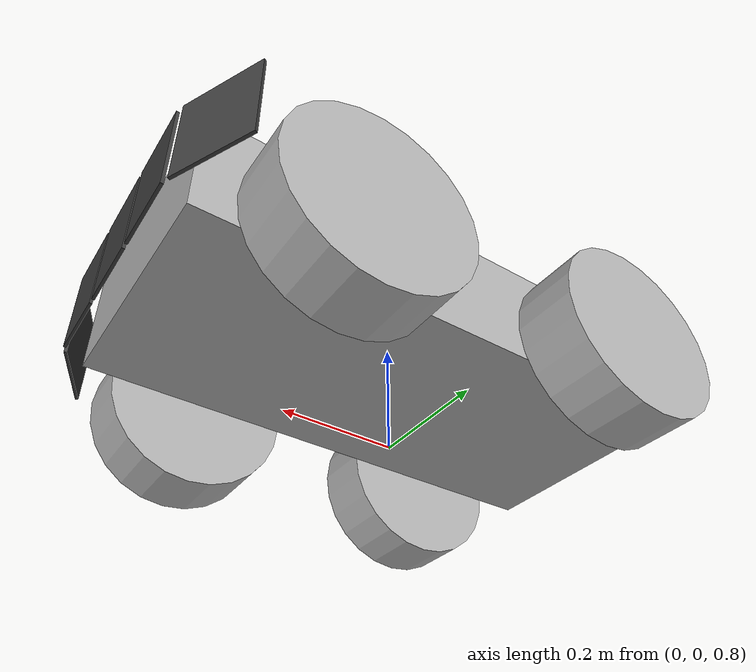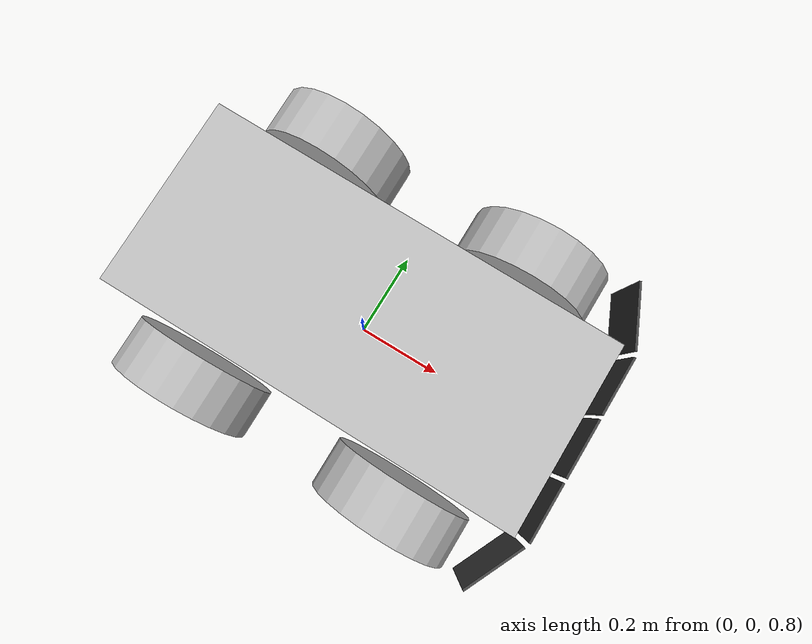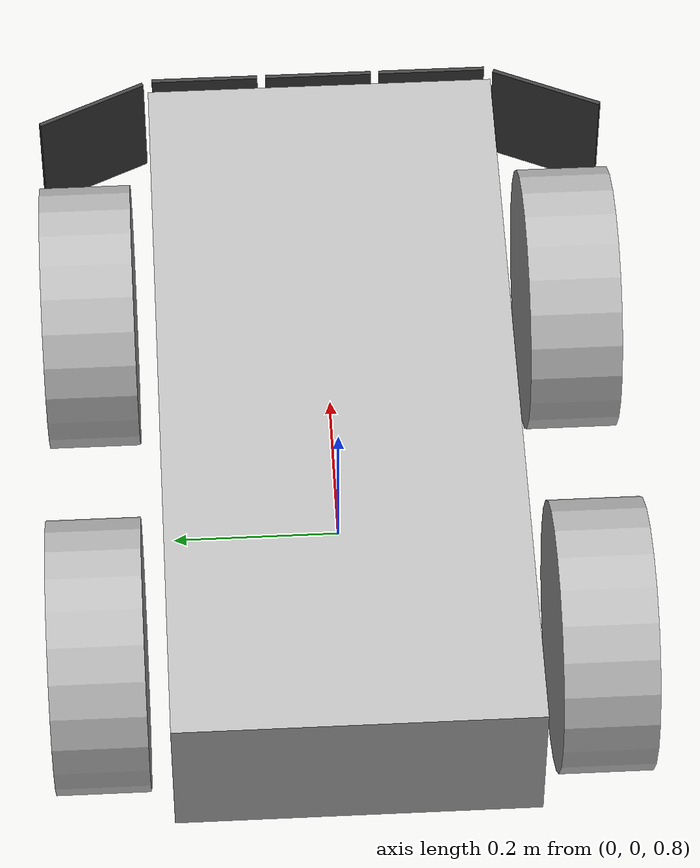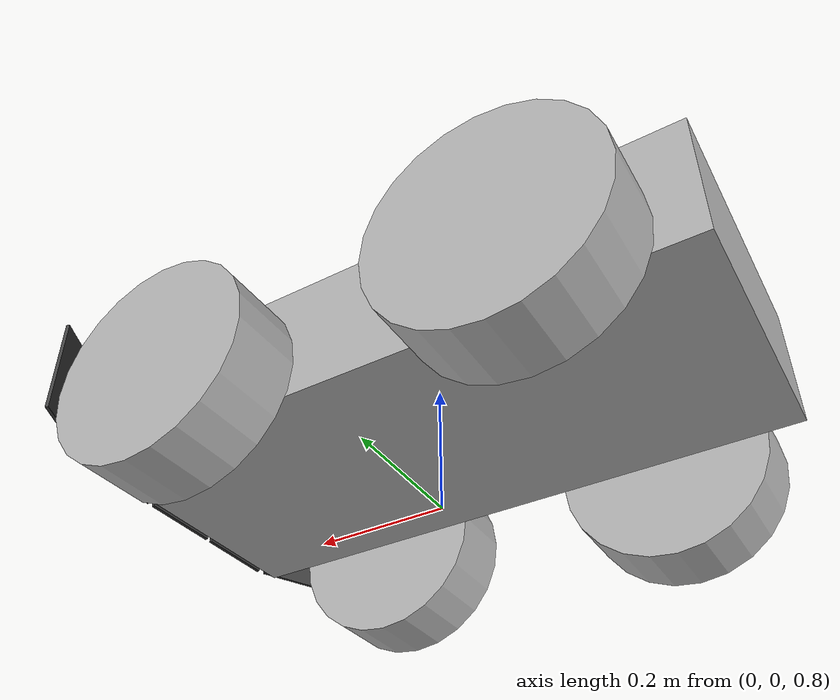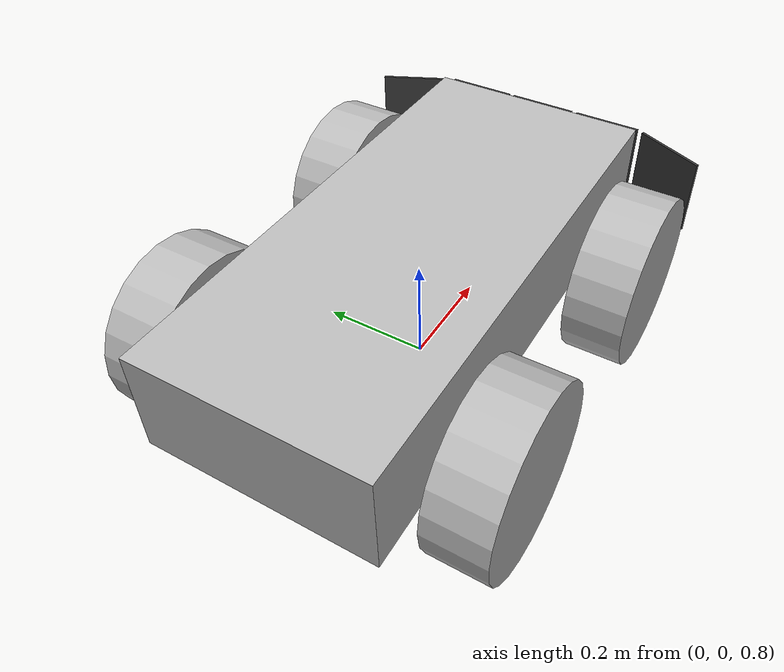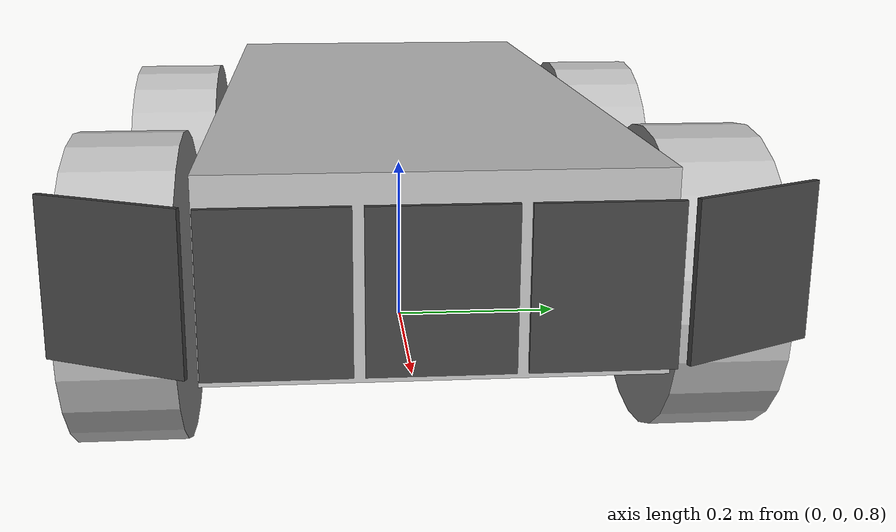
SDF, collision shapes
<?xml version="1.0" ?>
<!-- |    This document was autogenerated by xacro from model.xacro                    | -->
<!-- |    EDITING THIS FILE BY HAND IS NOT RECOMMENDED                                 | -->
<sdf version="1.10">
  <model canonical_link="chassis" name="scout">
    <!-- base_link -->
    <link name="chassis">
      <pose relative_to="__model__">0 0 1 0 0 0</pose>
      <inertial auto="true">
        <mass>67</mass>
      </inertial>
      <visual name="visual">
        <geometry>
          <mesh>
            <uri>meshes/scout_base.dae</uri>
          </mesh>
        </geometry>
      </visual>
      <collision name="collision">
        <geometry>
          <box>
            <size>0.93 0.42 0.19</size>
          </box>
        </geometry>
      </collision>
      <sensor name="imu_sensor" type="imu">
        <always_on>true</always_on>
        <update_rate>1</update_rate>
        <visualize>true</visualize>
        <topic>scout/imu</topic>
      </sensor>
    </link>
    <!-- wheels -->
    <link name="front_left_wheel">
      <pose relative_to="chassis">0.249 0.29153 -0.0702 0.0 0.0 0.0</pose>
      <inertial auto="true">
        <mass>8</mass>
      </inertial>
      <visual name="visual">
        <geometry>
          <mesh>
            <uri>meshes/wheel_type2.dae</uri>
          </mesh>
        </geometry>
      </visual>
      <collision name="collision">
        <pose relative_to="chassis">0.249 0.29153 -0.0702 1.5707963267948966 0.0 0.0</pose>
        <geometry>
          <cylinder>
            <radius>0.16</radius>
            <length>0.11</length>
          </cylinder>
        </geometry>
      </collision>
    </link>
    <joint name="front_left_wheel_joint" type="revolute">
      <pose relative_to="front_left_wheel"/>
      <parent>chassis</parent>
      <child>front_left_wheel</child>
      <axis>
        <xyz expressed_in="__model__">0 1 0</xyz>
        <limit>
          <lower>-inf</lower>
          <upper>inf</upper>
        </limit>
      </axis>
    </joint>
    <link name="front_right_wheel">
      <pose relative_to="chassis">0.249 -0.29153 -0.0702 3.141592653589793 0.0 0.0</pose>
      <inertial auto="true">
        <mass>8</mass>
      </inertial>
      <visual name="visual">
        <geometry>
          <mesh>
            <uri>meshes/wheel_type1.dae</uri>
          </mesh>
        </geometry>
      </visual>
      <collision name="collision">
        <pose relative_to="chassis">0.249 -0.29153 -0.0702 -1.5707963267948966 0.0 0.0</pose>
        <geometry>
          <cylinder>
            <radius>0.16</radius>
            <length>0.11</length>
          </cylinder>
        </geometry>
      </collision>
    </link>
    <joint name="front_right_wheel_joint" type="revolute">
      <pose relative_to="front_right_wheel"/>
      <parent>chassis</parent>
      <child>front_right_wheel</child>
      <axis>
        <xyz expressed_in="__model__">0 1 0</xyz>
        <limit>
          <lower>-inf</lower>
          <upper>inf</upper>
        </limit>
      </axis>
    </joint>
    <link name="back_left_wheel">
      <pose relative_to="chassis">-0.249 0.29153 -0.0702 0.0 0.0 0.0</pose>
      <inertial auto="true">
        <mass>8</mass>
      </inertial>
      <visual name="visual">
        <geometry>
          <mesh>
            <uri>meshes/wheel_type1.dae</uri>
          </mesh>
        </geometry>
      </visual>
      <collision name="collision">
        <pose relative_to="chassis">-0.249 0.29153 -0.0702 1.5707963267948966 0.0 0.0</pose>
        <geometry>
          <cylinder>
            <radius>0.16</radius>
            <length>0.11</length>
          </cylinder>
        </geometry>
      </collision>
    </link>
    <joint name="back_left_wheel_joint" type="revolute">
      <pose relative_to="back_left_wheel"/>
      <parent>chassis</parent>
      <child>back_left_wheel</child>
      <axis>
        <xyz expressed_in="__model__">0 1 0</xyz>
        <limit>
          <lower>-inf</lower>
          <upper>inf</upper>
        </limit>
      </axis>
    </joint>
    <link name="back_right_wheel">
      <pose relative_to="chassis">-0.249 -0.29153 -0.0702 3.141592653589793 0.0 0.0</pose>
      <inertial auto="true">
        <mass>8</mass>
      </inertial>
      <visual name="visual">
        <geometry>
          <mesh>
            <uri>meshes/wheel_type2.dae</uri>
          </mesh>
        </geometry>
      </visual>
      <collision name="collision">
        <pose relative_to="chassis">-0.249 -0.29153 -0.0702 -1.5707963267948966 0.0 0.0</pose>
        <geometry>
          <cylinder>
            <radius>0.16</radius>
            <length>0.11</length>
          </cylinder>
        </geometry>
      </collision>
    </link>
    <joint name="back_right_wheel_joint" type="revolute">
      <pose relative_to="back_right_wheel"/>
      <parent>chassis</parent>
      <child>back_right_wheel</child>
      <axis>
        <xyz expressed_in="__model__">0 1 0</xyz>
        <limit>
          <lower>-inf</lower>
          <upper>inf</upper>
        </limit>
      </axis>
    </joint>
    <!-- visual connection -->
    <link name="force_bar_connection_visual">
      <visual name="force_bar_connection_visual_center_bar_left">
        <pose relative_to="chassis">0.4 0.04 0 0 0 0</pose>
        <geometry>
          <box>
            <size>0.2 0.025 0.025</size>
          </box>
        </geometry>
        <material>
          <ambient>0.25 0.25 0.25 1.0</ambient>
          <diffuse>0.25 0.25 0.25 1.0</diffuse>
          <specular>0.25 0.25 0.25 1.0</specular>
        </material>
      </visual>
      <visual name="force_bar_connection_visual_center_bar_right">
        <pose relative_to="chassis">0.4 -0.04 0 0 0 0</pose>
        <geometry>
          <box>
            <size>0.2 0.025 0.025</size>
          </box>
        </geometry>
        <material>
          <ambient>0.25 0.25 0.25 1.0</ambient>
          <diffuse>0.25 0.25 0.25 1.0</diffuse>
          <specular>0.25 0.25 0.25 1.0</specular>
        </material>
      </visual>
      <visual name="force_bar_connection_visual_front_bar_top">
        <pose relative_to="chassis">0.4875 0 0 0 0 0</pose>
        <geometry>
          <box>
            <size>0.025 0.41 0.025</size>
          </box>
        </geometry>
        <material>
          <ambient>0.25 0.25 0.25 1.0</ambient>
          <diffuse>0.25 0.25 0.25 1.0</diffuse>
          <specular>0.25 0.25 0.25 1.0</specular>
        </material>
      </visual>
      <visual name="force_bar_connection_visual_front_bar_left">
        <pose relative_to="chassis">0.4575 0.265 0 0 0 0.43633</pose>
        <geometry>
          <box>
            <size>0.025 0.15 0.025</size>
          </box>
        </geometry>
        <material>
          <ambient>0.25 0.25 0.25 1.0</ambient>
          <diffuse>0.25 0.25 0.25 1.0</diffuse>
          <specular>0.25 0.25 0.25 1.0</specular>
        </material>
      </visual>
      <visual name="force_bar_connection_visual_front_bar_right">
        <pose relative_to="chassis">0.4575 -0.265 0 0 0 -0.43633</pose>
        <geometry>
          <box>
            <size>0.025 0.15 0.025</size>
          </box>
        </geometry>
        <material>
          <ambient>0.25 0.25 0.25 1.0</ambient>
          <diffuse>0.25 0.25 0.25 1.0</diffuse>
          <specular>0.25 0.25 0.25 1.0</specular>
        </material>
      </visual>
    </link>
    <joint name="force_bar_connection_visual_joint" type="fixed">
      <pose relative_to="force_bar_connection_visual"/>
      <parent>chassis</parent>
      <child>force_bar_connection_visual</child>
    </joint>
    <!-- sensor bar -->
    <link name="force_bar_P0_link">
      <pose relative_to="chassis">0.466 0.28 0.0 1.5707963267948966 0.0 0.43633</pose>
      <inertial auto="true">
        <mass>1</mass>
      </inertial>
      <visual name="visual">
        <geometry>
          <box>
            <size>0.005 0.15 0.14</size>
          </box>
        </geometry>
        <material>
          <ambient>0.25 0.25 0.25 1.0</ambient>
          <diffuse>0.25 0.25 0.25 1.0</diffuse>
          <specular>0.25 0.25 0.25 1.0</specular>
        </material>
      </visual>
      <collision name="collision">
        <geometry>
          <box>
            <size>0.005 0.15 0.14</size>
          </box>
        </geometry>
      </collision>
    </link>
    <joint name="force_bar_P0_joint" type="fixed">
      <pose relative_to="force_bar_P0_link"/>
      <parent>chassis</parent>
      <child>force_bar_P0_link</child>
      <sensor name="force_bar_P0_sensor" type="force_torque">
        <always_on>true</always_on>
        <update_rate>1000</update_rate>
        <visualize>true</visualize>
        <topic>/scout/force_bar/segment_0</topic>
      </sensor>
    </joint>
    <link name="force_bar_P1_link">
      <pose relative_to="chassis">0.5 0.14 0.0 1.5707963267948966 0.0 0.0</pose>
      <inertial auto="true">
        <mass>1</mass>
      </inertial>
      <visual name="visual">
        <geometry>
          <box>
            <size>0.005 0.15 0.13</size>
          </box>
        </geometry>
        <material>
          <ambient>0.25 0.25 0.25 1.0</ambient>
          <diffuse>0.25 0.25 0.25 1.0</diffuse>
          <specular>0.25 0.25 0.25 1.0</specular>
        </material>
      </visual>
      <collision name="collision">
        <geometry>
          <box>
            <size>0.005 0.15 0.13</size>
          </box>
        </geometry>
      </collision>
    </link>
    <joint name="force_bar_P1_joint" type="fixed">
      <pose relative_to="force_bar_P1_link"/>
      <parent>chassis</parent>
      <child>force_bar_P1_link</child>
      <sensor name="force_bar_P1_sensor" type="force_torque">
        <always_on>true</always_on>
        <update_rate>1000</update_rate>
        <visualize>true</visualize>
        <topic>/scout/force_bar/segment_1</topic>
      </sensor>
    </joint>
    <link name="force_bar_P2_link">
      <pose relative_to="chassis">0.5 0.0 0.0 1.5707963267948966 0.0 0.0</pose>
      <inertial auto="true">
        <mass>1</mass>
      </inertial>
      <visual name="visual">
        <geometry>
          <box>
            <size>0.005 0.15 0.13</size>
          </box>
        </geometry>
        <material>
          <ambient>0.25 0.25 0.25 1.0</ambient>
          <diffuse>0.25 0.25 0.25 1.0</diffuse>
          <specular>0.25 0.25 0.25 1.0</specular>
        </material>
      </visual>
      <collision name="collision">
        <geometry>
          <box>
            <size>0.005 0.15 0.13</size>
          </box>
        </geometry>
      </collision>
    </link>
    <joint name="force_bar_P2_joint" type="fixed">
      <pose relative_to="force_bar_P2_link"/>
      <parent>chassis</parent>
      <child>force_bar_P2_link</child>
      <sensor name="force_bar_P2_sensor" type="force_torque">
        <always_on>true</always_on>
        <update_rate>1000</update_rate>
        <visualize>true</visualize>
        <topic>/scout/force_bar/segment_2</topic>
      </sensor>
    </joint>
    <link name="force_bar_P3_link">
      <pose relative_to="chassis">0.5 -0.14 0.0 1.5707963267948966 0.0 0.0</pose>
      <inertial auto="true">
        <mass>1</mass>
      </inertial>
      <visual name="visual">
        <geometry>
          <box>
            <size>0.005 0.15 0.13</size>
          </box>
        </geometry>
        <material>
          <ambient>0.25 0.25 0.25 1.0</ambient>
          <diffuse>0.25 0.25 0.25 1.0</diffuse>
          <specular>0.25 0.25 0.25 1.0</specular>
        </material>
      </visual>
      <collision name="collision">
        <geometry>
          <box>
            <size>0.005 0.15 0.13</size>
          </box>
        </geometry>
      </collision>
    </link>
    <joint name="force_bar_P3_joint" type="fixed">
      <pose relative_to="force_bar_P3_link"/>
      <parent>chassis</parent>
      <child>force_bar_P3_link</child>
      <sensor name="force_bar_P3_sensor" type="force_torque">
        <always_on>true</always_on>
        <update_rate>1000</update_rate>
        <visualize>true</visualize>
        <topic>/scout/force_bar/segment_3</topic>
      </sensor>
    </joint>
    <link name="force_bar_P4_link">
      <pose relative_to="chassis">0.466 -0.28 0.0 1.5707963267948966 0.0 -0.43633</pose>
      <inertial auto="true">
        <mass>1</mass>
      </inertial>
      <visual name="visual">
        <geometry>
          <box>
            <size>0.005 0.15 0.14</size>
          </box>
        </geometry>
        <material>
          <ambient>0.25 0.25 0.25 1.0</ambient>
          <diffuse>0.25 0.25 0.25 1.0</diffuse>
          <specular>0.25 0.25 0.25 1.0</specular>
        </material>
      </visual>
      <collision name="collision">
        <geometry>
          <box>
            <size>0.005 0.15 0.14</size>
          </box>
        </geometry>
      </collision>
    </link>
    <joint name="force_bar_P4_joint" type="fixed">
      <pose relative_to="force_bar_P4_link"/>
      <parent>chassis</parent>
      <child>force_bar_P4_link</child>
      <sensor name="force_bar_P4_sensor" type="force_torque">
        <always_on>true</always_on>
        <update_rate>1000</update_rate>
        <visualize>true</visualize>
        <topic>/scout/force_bar/segment_4</topic>
      </sensor>
    </joint>
    <!-- plugins -->
    <plugin filename="gz-sim-diff-drive-system" name="gz::sim::systems::DiffDrive">
      <!-- wheels -->
      <left_joint>front_left_wheel_joint</left_joint>
      <right_joint>front_right_wheel_joint</right_joint>
      <left_joint>back_left_wheel_joint</left_joint>
      <right_joint>back_right_wheel_joint</right_joint>
      <!-- kinematics -->
      <wheel_separation>0.58306</wheel_separation>
      <wheel_radius>0.16</wheel_radius>
      <!-- limits -->
      <!-- input -->
      <topic>/cmd_vel</topic>
      <!-- output -->
      <odom_publish_frequency>1</odom_publish_frequency>
    </plugin>
    <plugin filename="gz-sim-joint-state-publisher-system" name="gz::sim::systems::JointStatePublisher">
      <topic>joint_states</topic>
    </plugin>
    <plugin filename="gz-sim-triggered-publisher-system" name="gz::sim::systems::TriggeredPublisher">
      <input topic="/keyboard/keypress" type="gz.msgs.Int32">
        <match field="data">16777235</match>
      </input>
      <output topic="/cmd_vel" type="gz.msgs.Twist">
        linear: {x: 0.5}, angular: {z: 0.0}
      </output>
    </plugin>
    <plugin filename="gz-sim-triggered-publisher-system" name="gz::sim::systems::TriggeredPublisher">
      <input topic="/keyboard/keypress" type="gz.msgs.Int32">
        <match field="data">16777237</match>
      </input>
      <output topic="/cmd_vel" type="gz.msgs.Twist">
        linear: {x: -0.5}, angular: {z: 0.0}
      </output>
    </plugin>
    <plugin filename="gz-sim-triggered-publisher-system" name="gz::sim::systems::TriggeredPublisher">
      <input topic="/keyboard/keypress" type="gz.msgs.Int32">
        <match field="data">16777234</match>
      </input>
      <output topic="/cmd_vel" type="gz.msgs.Twist">
        linear: {x: 0.0}, angular: {z: 0.5}
      </output>
    </plugin>
    <plugin filename="gz-sim-triggered-publisher-system" name="gz::sim::systems::TriggeredPublisher">
      <input topic="/keyboard/keypress" type="gz.msgs.Int32">
        <match field="data">16777236</match>
      </input>
      <output topic="/cmd_vel" type="gz.msgs.Twist">
        linear: {x: 0.0}, angular: {z: -0.5}
      </output>
    </plugin>
    <plugin filename="gz-sim-triggered-publisher-system" name="gz::sim::systems::TriggeredPublisher">
      <input topic="/keyboard/keypress" type="gz.msgs.Int32">
        <match field="data">83</match>
      </input>
      <output topic="/cmd_vel" type="gz.msgs.Twist">
        linear: {x: 0.0}, angular: {z: 0.0}
      </output>
    </plugin>
    <plugin filename="gz-sim-pose-publisher-system" name="gz::sim::systems::PosePublisher">
      <publish_link_pose>False</publish_link_pose>
      <publish_visual_pose>False</publish_visual_pose>
      <publish_collision_pose>False</publish_collision_pose>
      <publish_sensor_pose>False</publish_sensor_pose>
      <publish_model_pose>True</publish_model_pose>
      <publish_nested_model_pose>True</publish_nested_model_pose>
      <use_pose_vector_msg>False</use_pose_vector_msg>
      <update_frequency>3</update_frequency>
      <static_publisher>False</static_publisher>
      <static_update_frequency>3</static_update_frequency>
    </plugin>
    <plugin filename="gz-sim-imu-system" name="gz::sim::systems::Imu">
  </plugin>
    <plugin filename="gz-sim-forcetorque-system" name="gz::sim::systems::ForceTorque">
  </plugin>
  </model>
</sdf>
